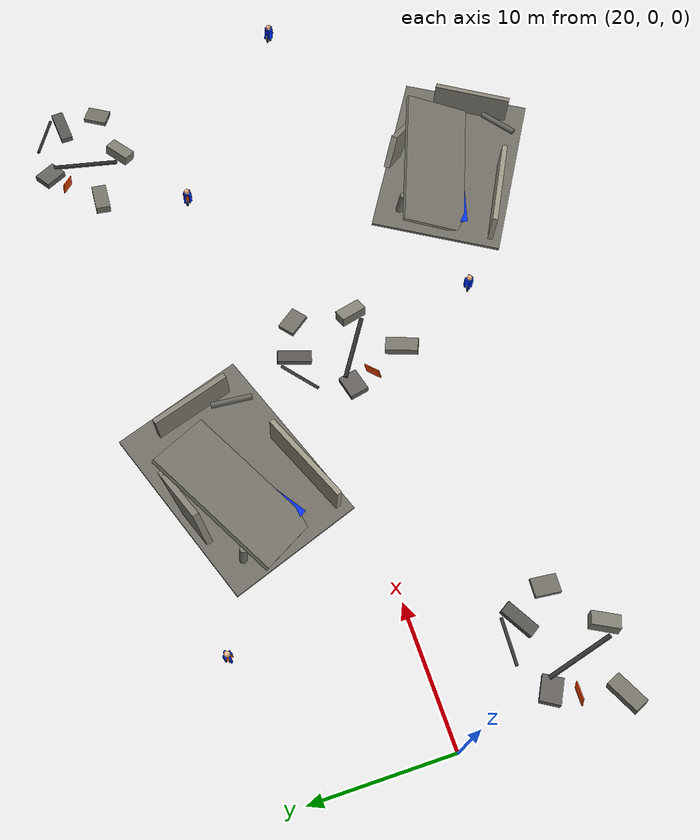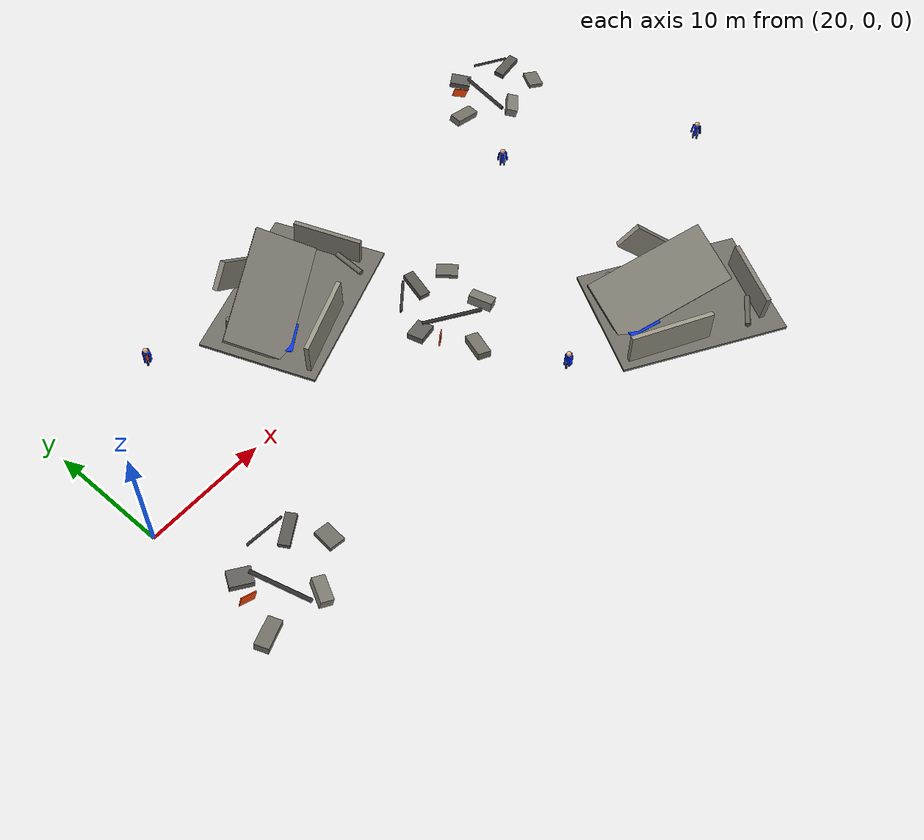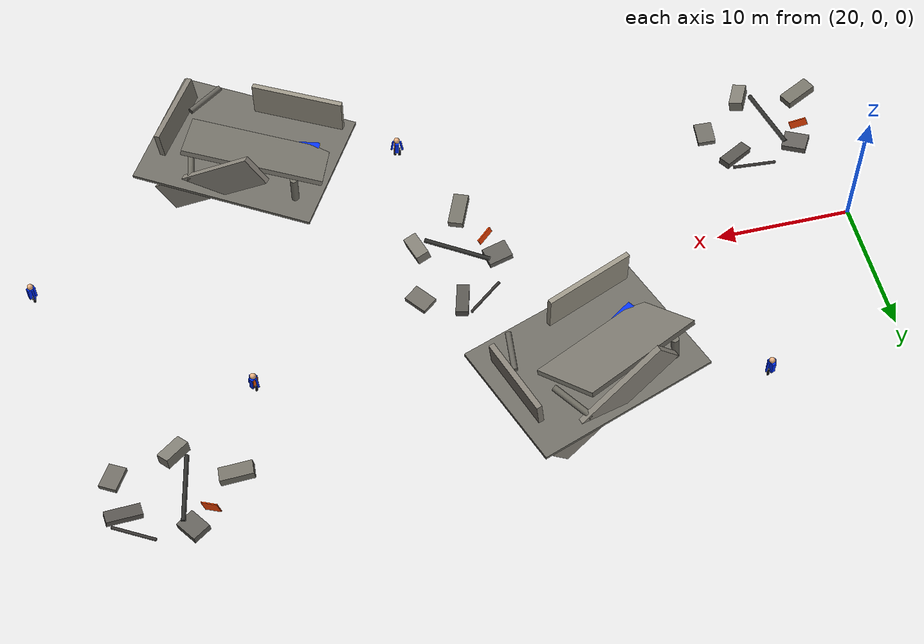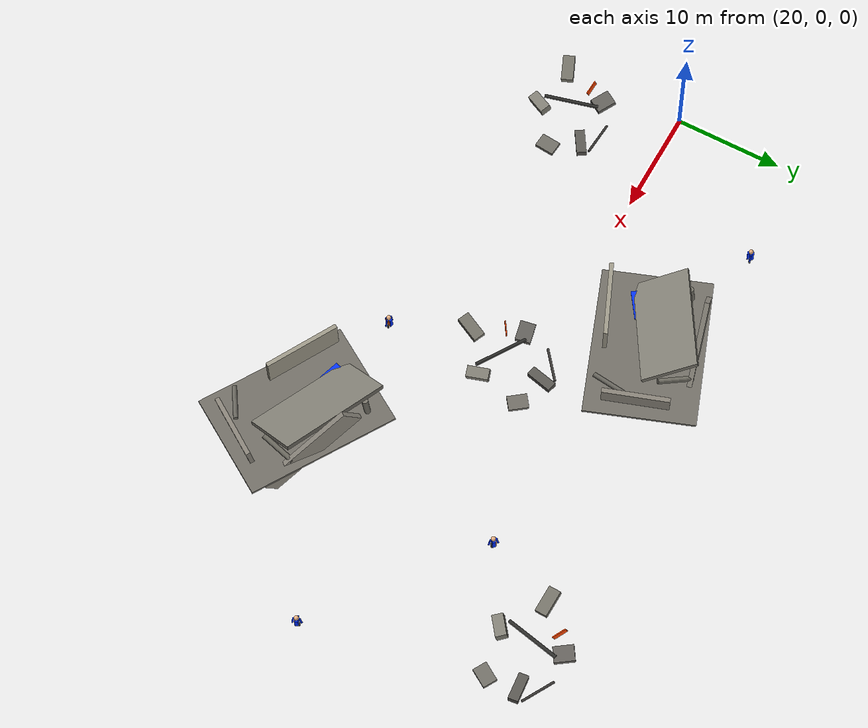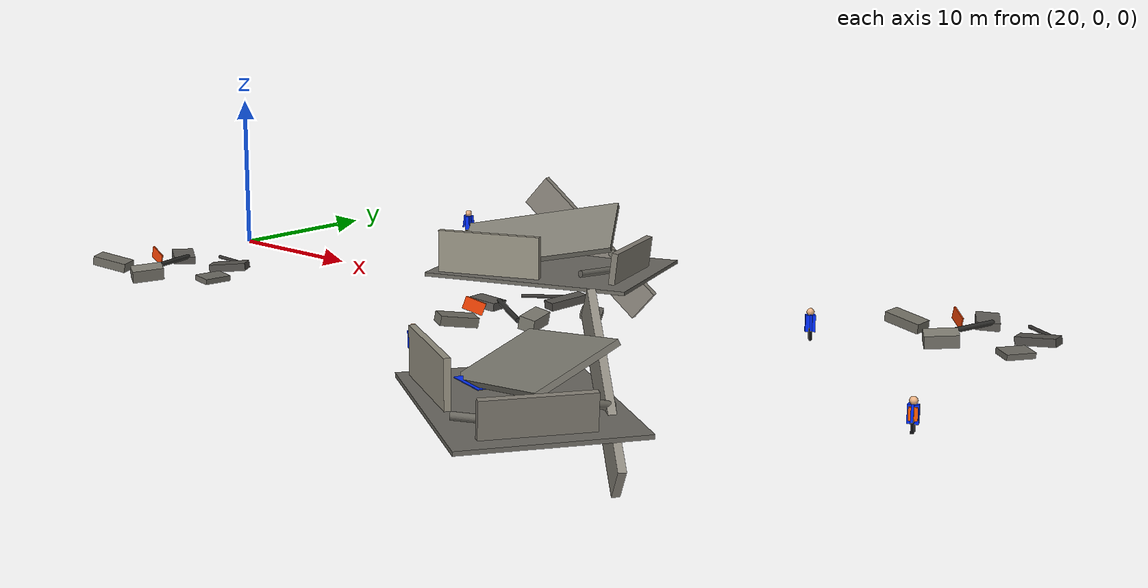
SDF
<sdf version="1.9">
 <world name="disaster_baylands">
  <physics type="ode">
   <max_step_size>0.004</max_step_size>
   <real_time_factor>1.0</real_time_factor>
   <real_time_update_rate>250</real_time_update_rate>
  </physics>
  <gravity>0 0 -9.8</gravity>
  <magnetic_field>6e-06 2.3e-05 -4.2e-05</magnetic_field>
  <atmosphere type="adiabatic"/>
  <scene>
   <ambient>0.8 0.5 1 1</ambient>
   <grid>false</grid>
   <sky><clouds>true</clouds></sky>
   <shadows>1</shadows>
  </scene>
  <light name="sunUTC" type="directional">
   <pose>0 0 500 0 0 0</pose>
   <cast_shadows>false</cast_shadows>
   <intensity>1</intensity>
   <direction>0.001 0.625 -0.78</direction>
   <diffuse>0.904 0.904 0.904 1</diffuse>
   <specular>0.271 0.271 0.271 1</specular>
   <attenuation><range>2000</range><linear>0</linear><constant>1</constant><quadratic>0</quadratic></attenuation>
  </light>
  <include>
   <uri>model://disaster_collapsed_building</uri>
   <name>collapsed_building_main</name>
   <pose>42 8 0 0 0 0.35</pose>
  </include>
  <include>
   <uri>model://disaster_collapsed_building</uri>
   <name>collapsed_building_west</name>
   <pose>62 -16 0 0 0 -0.55</pose>
  </include>
  <include>
   <uri>model://disaster_rubble_field</uri>
   <name>rubble_field_entry</name>
   <pose>24 -9 0 0 0 0.10</pose>
  </include>
  <include>
   <uri>model://disaster_rubble_field</uri>
   <name>rubble_field_center</name>
   <pose>49 -2 0 0 0 0.85</pose>
  </include>
  <include>
   <uri>model://disaster_rubble_field</uri>
   <name>rubble_field_east</name>
   <pose>72 12 0 0 0 -0.35</pose>
  </include>
  <include>
   <uri>model://disaster_survivor_person</uri>
   <name>survivor_01</name>
   <pose>30 12 0 0 0 -1.2</pose>
  </include>
  <include>
   <uri>model://disaster_survivor_person</uri>
   <name>survivor_02</name>
   <pose>51 -13 0 0 0 1.35</pose>
  </include>
  <include>
   <uri>model://disaster_survivor_person</uri>
   <name>survivor_03</name>
   <pose>65 5 0 0 0 -2.4</pose>
  </include>
  <include>
   <uri>model://disaster_survivor_person</uri>
   <name>survivor_04</name>
   <pose>79 -6 0 0 0 0.4</pose>
  </include>
  <spherical_coordinates>
   <surface_model>EARTH_WGS84</surface_model>
   <world_frame_orientation>ENU</world_frame_orientation>
   <latitude_deg>37.412173071650805</latitude_deg>
   <longitude_deg>-121.998878727967</longitude_deg>
   <elevation>38</elevation>
  </spherical_coordinates>
 </world>
</sdf>

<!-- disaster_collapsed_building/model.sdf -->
<sdf version='1.9'>
  <model name='disaster_collapsed_building'>
    <static>true</static>

    <link name='foundation_slab'>
      <pose>0 0 0.12 0 0 0</pose>
      <collision name='collision'>
        <geometry><box><size>14 10 0.24</size></box></geometry>
      </collision>
      <visual name='visual'>
        <geometry><box><size>14 10 0.24</size></box></geometry>
        <material>
          <ambient>0.23 0.23 0.22 1</ambient>
          <diffuse>0.43 0.42 0.39 1</diffuse>
        </material>
      </visual>
    </link>

    <link name='tilted_roof_slab'>
      <pose>-1.5 1.2 1.85 0.42 -0.18 0.18</pose>
      <collision name='collision'>
        <geometry><box><size>10.5 5.2 0.35</size></box></geometry>
      </collision>
      <visual name='visual'>
        <geometry><box><size>10.5 5.2 0.35</size></box></geometry>
        <material>
          <ambient>0.26 0.25 0.24 1</ambient>
          <diffuse>0.50 0.49 0.45 1</diffuse>
        </material>
      </visual>
    </link>

    <link name='fallen_wall_north'>
      <pose>1.0 4.2 0.78 0.0 0.72 -0.10</pose>
      <collision name='collision'>
        <geometry><box><size>11.0 0.45 2.4</size></box></geometry>
      </collision>
      <visual name='visual'>
        <geometry><box><size>11.0 0.45 2.4</size></box></geometry>
        <material>
          <ambient>0.30 0.29 0.27 1</ambient>
          <diffuse>0.56 0.54 0.50 1</diffuse>
        </material>
      </visual>
    </link>

    <link name='standing_wall_south'>
      <pose>-2.8 -4.0 1.5 0.0 0.0 0.05</pose>
      <collision name='collision'>
        <geometry><box><size>7.0 0.38 3.0</size></box></geometry>
      </collision>
      <visual name='visual'>
        <geometry><box><size>7.0 0.38 3.0</size></box></geometry>
        <material>
          <ambient>0.32 0.31 0.29 1</ambient>
          <diffuse>0.60 0.58 0.52 1</diffuse>
        </material>
      </visual>
    </link>

    <link name='broken_wall_east'>
      <pose>5.7 -0.5 1.15 0.12 0.0 1.55</pose>
      <collision name='collision'>
        <geometry><box><size>6.0 0.42 2.3</size></box></geometry>
      </collision>
      <visual name='visual'>
        <geometry><box><size>6.0 0.42 2.3</size></box></geometry>
        <material>
          <ambient>0.27 0.27 0.25 1</ambient>
          <diffuse>0.52 0.50 0.46 1</diffuse>
        </material>
      </visual>
    </link>

    <link name='column_01'>
      <pose>-5.2 3.1 1.05 0.10 0.05 0</pose>
      <collision name='collision'>
        <geometry><cylinder><radius>0.28</radius><length>2.1</length></cylinder></geometry>
      </collision>
      <visual name='visual'>
        <geometry><cylinder><radius>0.28</radius><length>2.1</length></cylinder></geometry>
        <material><diffuse>0.45 0.44 0.40 1</diffuse></material>
      </visual>
    </link>

    <link name='column_02'>
      <pose>3.2 2.7 0.85 1.35 0.0 0.35</pose>
      <collision name='collision'>
        <geometry><cylinder><radius>0.24</radius><length>3.3</length></cylinder></geometry>
      </collision>
      <visual name='visual'>
        <geometry><cylinder><radius>0.24</radius><length>3.3</length></cylinder></geometry>
        <material><diffuse>0.43 0.42 0.38 1</diffuse></material>
      </visual>
    </link>

    <link name='column_03'>
      <pose>4.4 -3.0 0.9 1.52 0.12 -0.45</pose>
      <collision name='collision'>
        <geometry><cylinder><radius>0.22</radius><length>3.0</length></cylinder></geometry>
      </collision>
      <visual name='visual'>
        <geometry><cylinder><radius>0.22</radius><length>3.0</length></cylinder></geometry>
        <material><diffuse>0.40 0.39 0.36 1</diffuse></material>
      </visual>
    </link>

    <link name='rescue_tarp'>
      <pose>-4.0 -1.0 0.28 0 0 0.25</pose>
      <visual name='visual'>
        <geometry><box><size>2.8 1.8 0.04</size></box></geometry>
        <material>
          <ambient>0.02 0.12 0.85 1</ambient>
          <diffuse>0.02 0.20 1.0 1</diffuse>
        </material>
      </visual>
    </link>
  </model>
</sdf>

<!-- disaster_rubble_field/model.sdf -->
<sdf version='1.9'>
  <model name='disaster_rubble_field'>
    <static>true</static>

    <link name='block_01'>
      <pose>-4.2 -2.1 0.32 0.08 0.16 0.3</pose>
      <collision name='collision'><geometry><box><size>2.4 1.1 0.6</size></box></geometry></collision>
      <visual name='visual'><geometry><box><size>2.4 1.1 0.6</size></box></geometry><material><diffuse>0.45 0.44 0.40 1</diffuse></material></visual>
    </link>
    <link name='block_02'>
      <pose>-2.1 2.2 0.25 -0.05 0.12 -0.65</pose>
      <collision name='collision'><geometry><box><size>1.8 1.4 0.5</size></box></geometry></collision>
      <visual name='visual'><geometry><box><size>1.8 1.4 0.5</size></box></geometry><material><diffuse>0.38 0.37 0.35 1</diffuse></material></visual>
    </link>
    <link name='block_03'>
      <pose>0.3 -3.1 0.42 0.22 -0.06 1.0</pose>
      <collision name='collision'><geometry><box><size>2.0 1.0 0.8</size></box></geometry></collision>
      <visual name='visual'><geometry><box><size>2.0 1.0 0.8</size></box></geometry><material><diffuse>0.50 0.49 0.45 1</diffuse></material></visual>
    </link>
    <link name='block_04'>
      <pose>2.7 1.9 0.28 0.04 -0.10 0.45</pose>
      <collision name='collision'><geometry><box><size>2.5 0.9 0.5</size></box></geometry></collision>
      <visual name='visual'><geometry><box><size>2.5 0.9 0.5</size></box></geometry><material><diffuse>0.34 0.33 0.31 1</diffuse></material></visual>
    </link>
    <link name='block_05'>
      <pose>4.0 -0.8 0.18 0.0 0.08 -0.2</pose>
      <collision name='collision'><geometry><box><size>1.3 1.8 0.35</size></box></geometry></collision>
      <visual name='visual'><geometry><box><size>1.3 1.8 0.35</size></box></geometry><material><diffuse>0.43 0.42 0.39 1</diffuse></material></visual>
    </link>
    <link name='pipe_01'>
      <pose>-1.0 -0.5 0.38 1.5708 0.0 0.15</pose>
      <collision name='collision'><geometry><cylinder><radius>0.16</radius><length>5.0</length></cylinder></geometry></collision>
      <visual name='visual'><geometry><cylinder><radius>0.16</radius><length>5.0</length></cylinder></geometry><material><diffuse>0.18 0.18 0.17 1</diffuse></material></visual>
    </link>
    <link name='pipe_02'>
      <pose>1.7 3.2 0.30 1.5708 0.0 1.4</pose>
      <collision name='collision'><geometry><cylinder><radius>0.11</radius><length>3.2</length></cylinder></geometry></collision>
      <visual name='visual'><geometry><cylinder><radius>0.11</radius><length>3.2</length></cylinder></geometry><material><diffuse>0.22 0.21 0.20 1</diffuse></material></visual>
    </link>
    <link name='warning_panel'>
      <pose>-3.0 0.7 0.42 0.0 0.35 -0.25</pose>
      <visual name='visual'>
        <geometry><box><size>1.3 0.08 0.8</size></box></geometry>
        <material><diffuse>1.0 0.28 0.02 1</diffuse></material>
      </visual>
    </link>
  </model>
</sdf>

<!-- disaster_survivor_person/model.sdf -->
<sdf version='1.9'>
  <model name='disaster_survivor_person'>
    <static>true</static>

    <link name='torso'>
      <pose>0 0 0.95 0 0 0</pose>
      <collision name='collision'>
        <geometry><box><size>0.55 0.28 0.95</size></box></geometry>
      </collision>
      <visual name='blue_shirt'>
        <geometry><box><size>0.58 0.30 0.98</size></box></geometry>
        <material>
          <ambient>0.0 0.13 0.9 1</ambient>
          <diffuse>0.0 0.18 1.0 1</diffuse>
        </material>
      </visual>
      <visual name='orange_vest'>
        <pose>0.01 -0.16 0.03 0 0 0</pose>
        <geometry><box><size>0.48 0.04 0.70</size></box></geometry>
        <material>
          <ambient>1.0 0.22 0.0 1</ambient>
          <diffuse>1.0 0.35 0.0 1</diffuse>
        </material>
      </visual>
    </link>

    <link name='head'>
      <pose>0 0 1.62 0 0 0</pose>
      <collision name='collision'>
        <geometry><sphere><radius>0.22</radius></sphere></geometry>
      </collision>
      <visual name='visual'>
        <geometry><sphere><radius>0.22</radius></sphere></geometry>
        <material>
          <ambient>0.84 0.62 0.45 1</ambient>
          <diffuse>0.92 0.70 0.52 1</diffuse>
        </material>
      </visual>
    </link>

    <link name='left_arm'>
      <pose>0 0.33 1.05 0.15 0.0 0.0</pose>
      <collision name='collision'>
        <geometry><cylinder><radius>0.075</radius><length>0.9</length></cylinder></geometry>
      </collision>
      <visual name='visual'>
        <geometry><cylinder><radius>0.075</radius><length>0.9</length></cylinder></geometry>
        <material><diffuse>0.0 0.18 1.0 1</diffuse></material>
      </visual>
    </link>

    <link name='right_arm'>
      <pose>0 -0.33 1.05 -0.15 0.0 0.0</pose>
      <collision name='collision'>
        <geometry><cylinder><radius>0.075</radius><length>0.9</length></cylinder></geometry>
      </collision>
      <visual name='visual'>
        <geometry><cylinder><radius>0.075</radius><length>0.9</length></cylinder></geometry>
        <material><diffuse>0.0 0.18 1.0 1</diffuse></material>
      </visual>
    </link>

    <link name='left_leg'>
      <pose>0 0.16 0.35 0 0 0</pose>
      <collision name='collision'>
        <geometry><cylinder><radius>0.09</radius><length>0.72</length></cylinder></geometry>
      </collision>
      <visual name='visual'>
        <geometry><cylinder><radius>0.09</radius><length>0.72</length></cylinder></geometry>
        <material><diffuse>0.05 0.05 0.06 1</diffuse></material>
      </visual>
    </link>

    <link name='right_leg'>
      <pose>0 -0.16 0.35 0 0 0</pose>
      <collision name='collision'>
        <geometry><cylinder><radius>0.09</radius><length>0.72</length></cylinder></geometry>
      </collision>
      <visual name='visual'>
        <geometry><cylinder><radius>0.09</radius><length>0.72</length></cylinder></geometry>
        <material><diffuse>0.05 0.05 0.06 1</diffuse></material>
      </visual>
    </link>
  </model>
</sdf>
